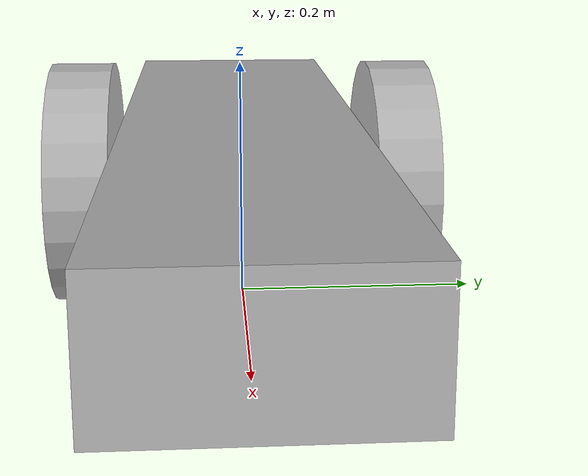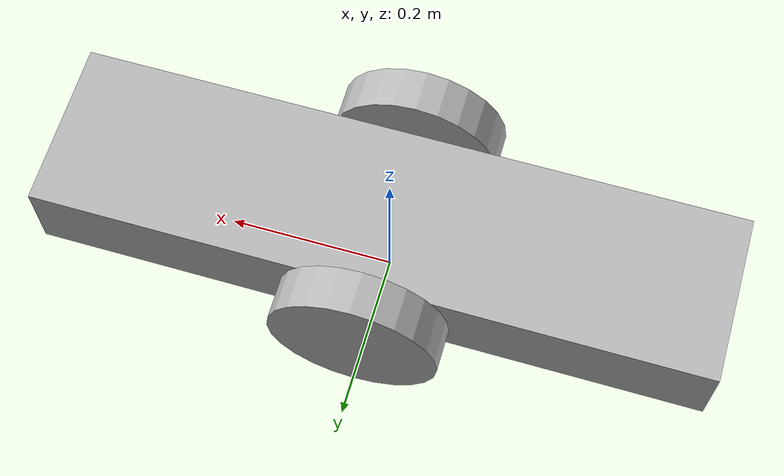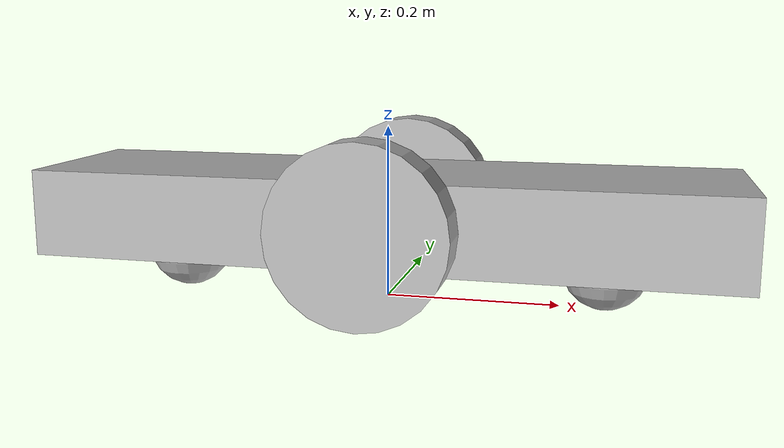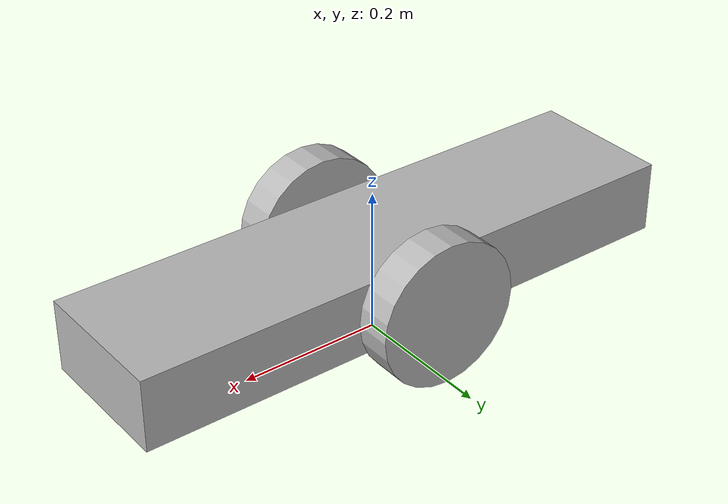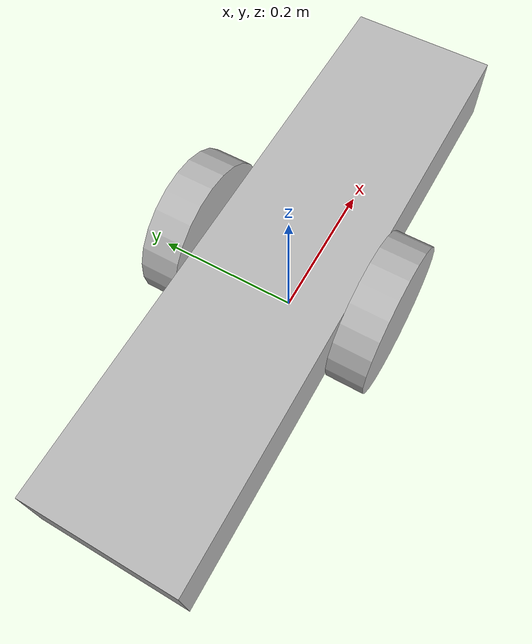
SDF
<?xml version='1.0'?>
<sdf version='1.7'>

<model name="car">
    <static>false</static>

    <link name='chassis'>
        <pose>0 0 0.1 0 0 0</pose>

        <collision name='collision'>
            <geometry>
                <box>
                    <size>0.8 0.2 0.1</size>
                </box>
            </geometry>
            <material>
                <ambient>1.0 0.0 0.0 1.0</ambient>
                <diffuse>1.0 0.0 0.0 1.0</diffuse>
                <specular>0.0 0.0 0.0 1.0</specular>
                <emissive>0.0 0.0 0.0 1.0</emissive>
            </material>
        </collision>

        <visual name='visual'>
            <geometry>
                <box>
                    <size>0.8 0.2 0.1</size>
                </box>
            </geometry>
        </visual>

        <collision name='caster_collision'>
            <pose>-0.25 0 -0.05 0 0 0</pose>
            <geometry>
                <sphere>
                    <radius>.05</radius>
                </sphere>
            </geometry>

            <surface>
                <friction>
                <ode>
                    <mu>0.01</mu>
                    <mu2>0.01</mu2>
                    <slip1>1.0</slip1>
                    <slip2>1.0</slip2>
                </ode>
                </friction>
            </surface>
        </collision>

        <visual name='caster_visual'>
            <pose>-0.25 0 -0.05 0 0 0</pose>
            <geometry>
                <sphere>
                <radius>.05</radius>
                </sphere>
            </geometry>
        </visual>

        <collision name='caster_collision2'>
            <pose>0.25 0 -0.05 0 0 0</pose>
            <geometry>
                <sphere>
                    <radius>.05</radius>
                </sphere>
            </geometry>

            <surface>
                <friction>
                <ode>
                    <mu>0.01</mu>
                    <mu2>0.01</mu2>
                    <slip1>1.0</slip1>
                    <slip2>1.0</slip2>
                </ode>
                </friction>
            </surface>
        </collision>

        <visual name='caster_visual2'>
            <pose>0.25 0 -0.05 0 0 0</pose>
            <geometry>
                <sphere>
                <radius>.05</radius>
                </sphere>
            </geometry>
        </visual>

    </link>

    <link name="left_wheel">
        <pose>0. 0.13 0.1 0 1.5707 1.5707</pose>
        <collision name="collision">
            <geometry>
            <cylinder>
                <radius>.1</radius>
                <length>.05</length>
            </cylinder>
            </geometry>
        </collision>
        <visual name="visual">
            <geometry>
            <cylinder>
                <radius>.1</radius>
                <length>.05</length>
            </cylinder>
            </geometry>
        </visual>
    </link>

    <link name="right_wheel">
        <pose>0. -0.13 0.1 0 1.5707 1.5707</pose>
        <collision name="collision">
        <geometry>
            <cylinder>
            <radius>.1</radius>
            <length>.05</length>
            </cylinder>
        </geometry>
        </collision>
        <visual name="visual">
        <geometry>
            <cylinder>
            <radius>.1</radius>
            <length>.05</length>
            </cylinder>
        </geometry>
        </visual>
    </link>

    <link name="imu_link">
        <gravity>true</gravity>
        <sensor name="imu" type="imu">
            <always_on>true</always_on>
            <update_rate>100</update_rate>
            <visualize>true</visualize>
            <imu>
                <orientation>
                <x>
                    <noise type="gaussian">
                        <mean>0.0</mean>
                        <stddev>2e-3</stddev>
                    </noise>
                </x>
                <y>
                    <noise type="gaussian">
                        <mean>0.0</mean>
                        <stddev>2e-3</stddev>
                    </noise>
                </y>
                <z>
                    <noise type="gaussian">
                        <mean>0.0</mean>
                        <stddev>2e-3</stddev>
                    </noise>
                </z>
                </orientation>
                <angular_velocity>
                <x>
                    <noise type="gaussian">
                    <mean>0.0</mean>
                    <stddev>2e-4</stddev>
                    </noise>
                </x>
                <y>
                    <noise type="gaussian">
                    <mean>0.0</mean>
                    <stddev>2e-4</stddev>
                    </noise>
                </y>
                <z>
                    <noise type="gaussian">
                    <mean>0.0</mean>
                    <stddev>2e-4</stddev>
                    </noise>
                </z>
                </angular_velocity>
                <linear_acceleration>
                <x>
                    <noise type="gaussian">
                    <mean>0.0</mean>
                    <stddev>1.7e-2</stddev>
                    </noise>
                </x>
                <y>
                    <noise type="gaussian">
                    <mean>0.0</mean>
                    <stddev>1.7e-2</stddev>
                    </noise>
                </y>
                <z>
                    <noise type="gaussian">
                    <mean>0.0</mean>
                    <stddev>1.7e-2</stddev>
                    </noise>
                </z>
                </linear_acceleration>
            </imu>
            <plugin name="basic_mobile_bot_imu" filename="libgazebo_ros_imu_sensor.so">
                <initial_orientation_as_reference>false</initial_orientation_as_reference>
                <frame_name>imu_link</frame_name>
                <ros>
                    <namespace>/imu</namespace>
                    <remapping>~/out:=data</remapping>
                </ros>
            </plugin>
        </sensor>
    </link>

    <joint type="revolute" name="left_wheel_hinge">
        <pose>0 0 -0.03 0 0 0</pose>
        <child>left_wheel</child>
        <parent>chassis</parent>
        <axis>
            <xyz>0 0 1</xyz>
        </axis>
    </joint>

    <joint type="revolute" name="right_wheel_hinge">
        <pose>0 0 0.03 0 0 0</pose>
        <child>right_wheel</child>
        <parent>chassis</parent>
        <axis>
            <xyz>0 0 1</xyz>
        </axis>
    </joint>

    <joint name="imu_joint" type="fixed">
        <child>imu_link</child>
        <parent>chassis</parent>
        <pose>0 0 0 0 0 0</pose>
    </joint>

    <plugin name="wheel_driver" filename="libgazebo_ros_diff_drive.so">

        <update_rate>30</update_rate>

        <!-- wheels -->
        <left_joint>left_wheel_hinge</left_joint>
        <right_joint>right_wheel_hinge</right_joint>

        <!-- kinematics -->
        <wheel_separation>0.4</wheel_separation>
        <wheel_diameter>0.2</wheel_diameter>

        <!-- limits -->
        <max_wheel_torque>20</max_wheel_torque>
        <max_wheel_acceleration>1.0</max_wheel_acceleration>

        <!-- Receive velocity commands on this ROS topic -->
        <command_topic>cmd_vel</command_topic>

        <!-- output -->
        <!-- When false, publish no wheel odometry data to a ROS topic -->
        <publish_odom>true</publish_odom>

        <!-- When true, publish coordinate transform from odom to base_footprint -->
        <publish_odom_tf>true</publish_odom_tf>

        <!-- When true, publish coordinate transform from base_link to the wheels -->
        <!-- The robot_state_publisher package is often used to publish this transform -->
        <publish_wheel_tf>false</publish_wheel_tf>

        <odometry_topic>odom</odometry_topic>
        <odometry_frame>odom</odometry_frame>
        <robot_base_frame>base_footprint</robot_base_frame>

        <!-- Odometry source, 0 for ENCODER, 1 for WORLD, defaults to WORLD -->
        <odometry_source>0</odometry_source>

        <!-- Change the ROS topic we will publish the odometry data to -->

    </plugin>

</model>

</sdf>
